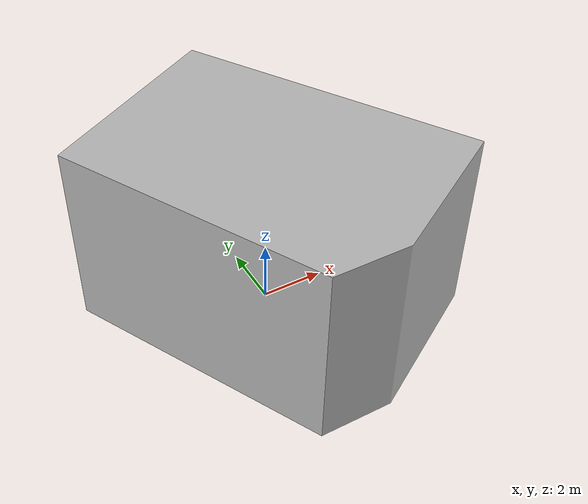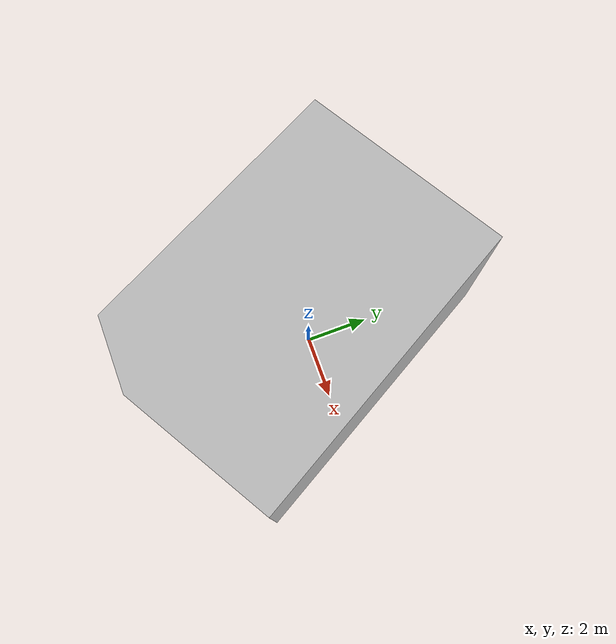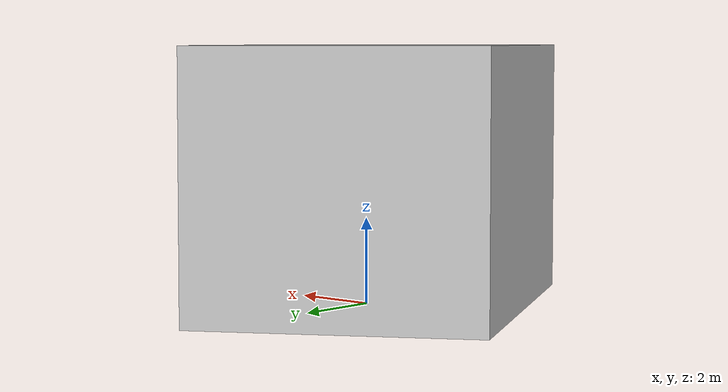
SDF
<?xml version="1.0" ?>
<sdf version="1.7">
  <model name="building_2063_assumed_a_casa">
    <static>true</static>
    <link name="building_link">
      <visual name="building_visual">
        <geometry>
          <mesh>
            <uri>model://building_2063_assumed_a_casa/meshes/construction_2063_assumed_A_Casa_h6m.obj</uri>
          </mesh>
        </geometry>
      </visual>
    <collision name="building_collision">
      <geometry>
        <mesh>
          <uri>model://building_2063_assumed_a_casa/meshes/construction_2063_assumed_A_Casa_h6m.obj</uri>
        </mesh>
      </geometry>
    </collision>
    </link>
  </model>
</sdf>
